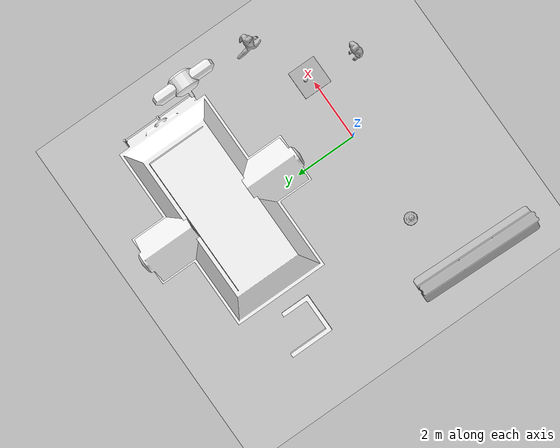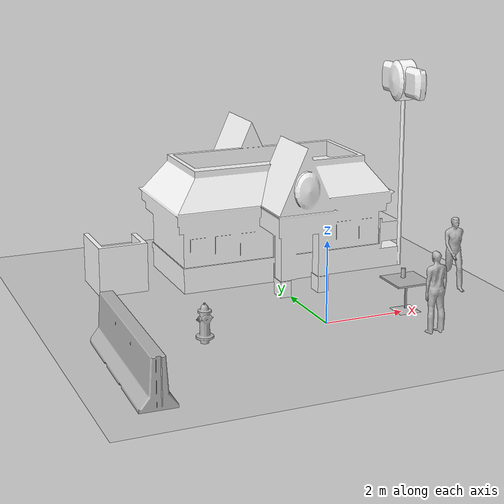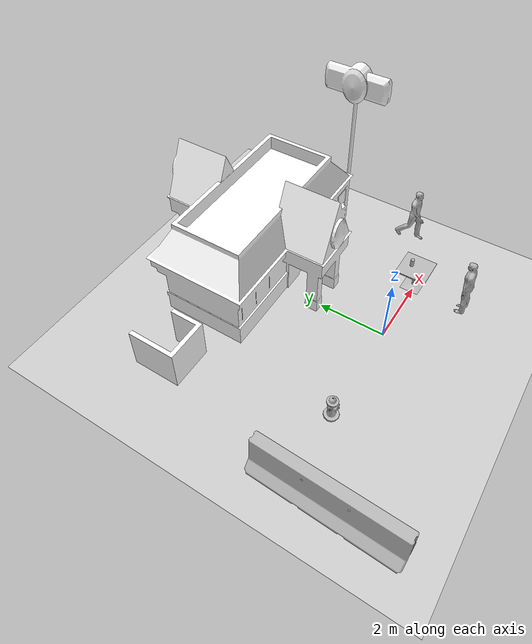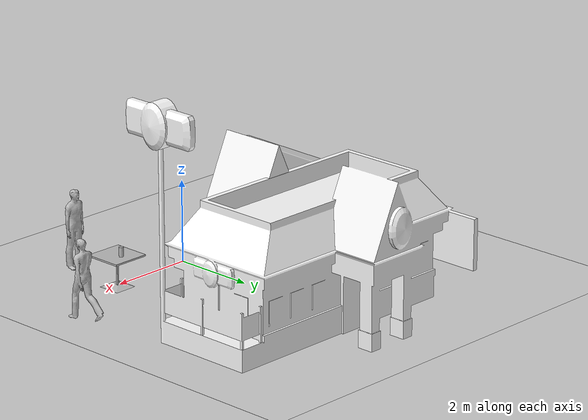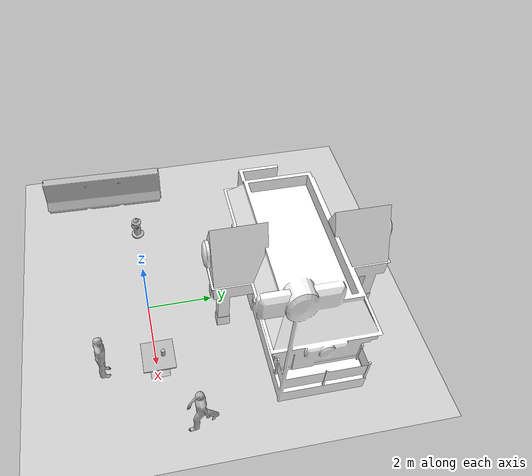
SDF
<sdf version="1.4">
 <world name="default">
  <light name="sun" type="directional">
   <pose>0 0 10 0 -0 0</pose>
   <diffuse>0.8 0.8 0.8 1</diffuse>
   <specular>0.2 0.2 0.2 1</specular>
   <attenuation>
    <range>1000</range>
    <constant>0.9</constant>
    <linear>0.01</linear>
    <quadratic>0.001</quadratic>
   </attenuation>
   <direction>-0.5 0.1 -0.9</direction>
  </light>
  <light name="point_light1" type="point">
   <pose>0 -2 2 0 -0 0</pose>
   <diffuse>0.5 0.5 0.5 1</diffuse>
   <specular>0.1 0.1 0.1 1</specular>
   <attenuation>
    <range>20</range>
    <constant>0.5</constant>
    <linear>0.01</linear>
    <quadratic>0.0</quadratic>
   </attenuation>
  </light>
  <light name="point_light2" type="point">
   <pose>0 1.5 2 0 -0 0</pose>
   <diffuse>0.5 0.5 0.5 1</diffuse>
   <specular>0.1 0.1 0.1 1</specular>
   <attenuation>
    <range>20</range>
    <constant>0.5</constant>
    <linear>0.01</linear>
    <quadratic>0.0</quadratic>
   </attenuation>
  </light>
  <light name="point_light3" type="point">
   <pose>6 2 2 0 -0 0</pose>
   <diffuse>0.5 0.5 0.5 1</diffuse>
   <specular>0.1 0.1 0.1 1</specular>
   <attenuation>
    <range>20</range>
    <constant>0.5</constant>
    <linear>0.01</linear>
    <quadratic>0.0</quadratic>
   </attenuation>
  </light>
  <light name="point_light4" type="point">
   <pose>-2 -1 2 0 -0 0</pose>
   <diffuse>0.5 0.5 0.5 1</diffuse>
   <specular>0.1 0.1 0.1 1</specular>
   <attenuation>
    <range>20</range>
    <constant>0.5</constant>
    <linear>0.01</linear>
    <quadratic>0.0</quadratic>
   </attenuation>
  </light>
  <model name="ground_plane">
   <static>1</static>
   <link name="link">
    <collision name="collision">
     <geometry><plane><normal>0 0 1</normal><size>100 100</size></plane></geometry>
     <surface><friction><ode><mu>100</mu><mu2>50</mu2></ode></friction></surface>
    </collision>
    <visual name="visual">
     <cast_shadows>0</cast_shadows>
     <geometry><plane><normal>0 0 1</normal><size>100 100</size></plane></geometry>
     <material>
      <script><uri>file://media/materials/scripts/gazebo.material</uri><name>Gazebo/Grey</name></script>
     </material>
    </visual>
    <velocity_decay><linear>0</linear><angular>0</angular></velocity_decay>
   </link>
  </model>
  <physics type="ode">
   <max_step_size>0.001</max_step_size>
   <real_time_factor>1</real_time_factor>
   <real_time_update_rate>1000</real_time_update_rate>
   <gravity>0 0 -9.8</gravity>
  </physics>
  <scene><ambient>0.4 0.4 0.4 1</ambient><background>0.7 0.7 0.7 1</background><shadows>1</shadows></scene>
  <spherical_coordinates>
   <surface_model>EARTH_WGS84</surface_model>
   <latitude_deg>0</latitude_deg>
   <longitude_deg>0</longitude_deg>
   <elevation>0</elevation>
   <heading_deg>0</heading_deg>
  </spherical_coordinates>
  <model name="cafe_table">
   <static>1</static>
   <link name="link">
    <collision name="surface">
     <pose>0 0 0.755 0 -0 0</pose>
     <geometry><box><size>0.913 0.913 0.04</size></box></geometry>
    </collision>
    <collision name="column">
     <pose>0 0 0.37 0 -0 0</pose>
     <geometry><box><size>0.042 0.042 0.74</size></box></geometry>
    </collision>
    <collision name="base">
     <pose>0 0 0.02 0 -0 0</pose>
     <geometry><box><size>0.56 0.56 0.04</size></box></geometry>
    </collision>
    <visual name="visual">
     <geometry><mesh><uri>model://cafe_table/meshes/cafe_table.dae</uri></mesh></geometry>
    </visual>
    <velocity_decay><linear>0</linear><angular>0</angular></velocity_decay>
   </link>
   <pose>2.13843 0.073593 0 0 -0 0</pose>
  </model>
  <model name="beer">
   <link name="link">
    <pose>0 0 0.115 0 -0 0</pose>
    <inertial>
     <mass>0.39</mass>
     <inertia><ixx>0.00058</ixx><ixy>0</ixy><ixz>0</ixz><iyy>0.00058</iyy><iyz>0</iyz><izz>0.00019</izz></inertia>
    </inertial>
    <collision name="collision">
     <geometry><cylinder><radius>0.055</radius><length>0.23</length></cylinder></geometry>
    </collision>
    <visual name="visual">
     <geometry><cylinder><radius>0.055</radius><length>0.23</length></cylinder></geometry>
     <material>
      <script>
       <uri>model://beer/materials/scripts</uri>
       <uri>model://beer/materials/textures</uri>
       <name>Beer/Diffuse</name>
      </script>
     </material>
    </visual>
    <velocity_decay><linear>0</linear><angular>0</angular></velocity_decay>
   </link>
   <pose>2.14199 0.219426 0.774992 -1e-06 2.7e-05 0.002547</pose>
   <static>0</static>
  </model>
  <model name="Fast Food">
   <static>1</static>
   <link name="link">
    <pose>0 0 1.57966 0 -0 0</pose>
    <collision name="collision">
     <geometry><mesh><uri>model://fast_food/meshes/fast_food.dae</uri></mesh></geometry>
    </collision>
    <visual name="visual">
     <geometry><mesh><uri>model://fast_food/meshes/fast_food.dae</uri></mesh></geometry>
     <material>
      <script>
       <uri>model://fast_food/materials/scripts</uri>
       <uri>model://fast_food/materials/textures</uri>
       <name>FastFood/Diffuse</name>
      </script>
      <shader type="normal_map_object_space"><normal_map>FastFood_Normal.png</normal_map></shader>
     </material>
    </visual>
    <velocity_decay><linear>0</linear><angular>0</angular></velocity_decay>
   </link>
   <pose>0.373295 4.42466 0 0 -0 0</pose>
  </model>
  <model name="fire_hydrant">
   <static>1</static>
   <link name="link">
    <collision name="collision">
     <geometry><mesh><uri>model://fire_hydrant/meshes/fire_hydrant.dae</uri></mesh></geometry>
    </collision>
    <visual name="visual">
     <geometry><mesh><uri>model://fire_hydrant/meshes/fire_hydrant.dae</uri></mesh></geometry>
    </visual>
    <velocity_decay><linear>0</linear><angular>0</angular></velocity_decay>
   </link>
   <pose>-3 0 0 0 -0 0</pose>
  </model>
  <model name="jersey_barrier">
   <static>1</static>
   <link name="link">
    <visual name="visual">
     <geometry><mesh><uri>model://jersey_barrier/meshes/jersey_barrier.dae</uri></mesh></geometry>
    </visual>
    <collision name="upright">
     <pose>0 0 0.5715 0 -0 0</pose>
     <geometry><box><size>4.06542 0.3063 1.143</size></box></geometry>
    </collision>
    <collision name="base">
     <pose>0 0 0.032258 0 -0 0</pose>
     <geometry><box><size>4.06542 0.8107 0.064516</size></box></geometry>
    </collision>
    <collision name="base2">
     <pose>0 0 0.1 0 -0 0</pose>
     <geometry><box><size>4.06542 0.65 0.1</size></box></geometry>
    </collision>
    <collision name="base3">
     <pose>0 0 0.2 0 -0 0</pose>
     <geometry><box><size>4.06542 0.5 0.1</size></box></geometry>
    </collision>
    <collision name="left-angle">
     <pose>0 -0.224 0.2401 0.9 -0 0</pose>
     <geometry><box><size>4.06542 0.5 0.064516</size></box></geometry>
    </collision>
    <collision name="right-angle">
     <pose>0 0.224 0.2401 -0.9 0 0</pose>
     <geometry><box><size>4.06542 0.5 0.064516</size></box></geometry>
    </collision>
    <velocity_decay><linear>0</linear><angular>0</angular></velocity_decay>
   </link>
   <pose>-5 -1 0 0 0 -1.59959</pose>
  </model>
  <model name="person_walking">
   <link name="link">
    <inertial>
     <pose>0 0 0.95 0 -0 0</pose>
     <mass>80</mass>
     <inertia><ixx>27.82</ixx><ixy>0</ixy><ixz>0</ixz><iyy>24.88</iyy><iyz>0</iyz><izz>4.57</izz></inertia>
    </inertial>
    <collision name="bottom">
     <pose>0 0 0.01 0 -0 0</pose>
     <geometry><box><size>0.35 0.75 0.02</size></box></geometry>
    </collision>
    <collision name="person">
     <pose>0 0 -0.02 0 -0 0</pose>
     <geometry><mesh><uri>model://person_walking/meshes/walking.dae</uri></mesh></geometry>
    </collision>
    <visual name="visual">
     <pose>0 0 -0.02 0 -0 0</pose>
     <geometry><mesh><uri>model://person_walking/meshes/walking.dae</uri></mesh></geometry>
    </visual>
    <velocity_decay><linear>0</linear><angular>0</angular></velocity_decay>
   </link>
   <pose>4 1 -0 5.16988e-26 1e-06 -0.000307</pose>
   <static>0</static>
  </model>
  <model name="person_standing">
   <link name="link">
    <inertial>
     <pose>0 -0.1 0.95 0 -0 0</pose>
     <mass>80</mass>
     <inertia><ixx>24.88</ixx><ixy>0</ixy><ixz>0</ixz><iyy>25.73</iyy><iyz>0</iyz><izz>2.48</izz></inertia>
    </inertial>
    <collision name="bottom">
     <pose>0 -0.1 0.01 0 -0 0</pose>
     <geometry><box><size>0.5 0.35 0.02</size></box></geometry>
    </collision>
    <collision name="person">
     <pose>0 0 0.02 0.04 -0 0</pose>
     <geometry><mesh><uri>model://person_standing/meshes/standing.dae</uri></mesh></geometry>
    </collision>
    <visual name="visual">
     <pose>0 0 0.02 0.04 -0 0</pose>
     <geometry><mesh><uri>model://person_standing/meshes/standing.dae</uri></mesh></geometry>
    </visual>
    <velocity_decay><linear>0</linear><angular>0</angular></velocity_decay>
   </link>
   <pose>2.00005 -1.57727 0 -1e-06 -1e-06 -3.12059</pose>
   <static>0</static>
  </model>
 </world>
</sdf>
